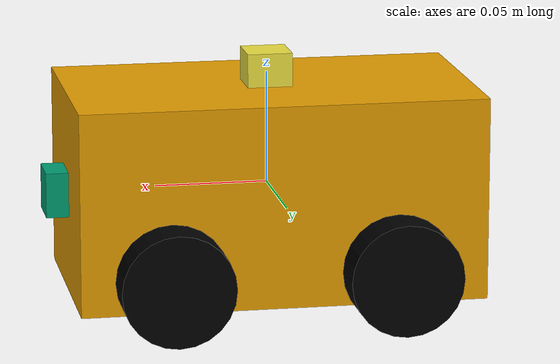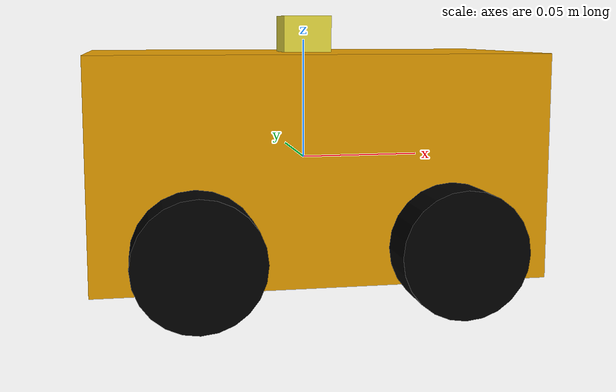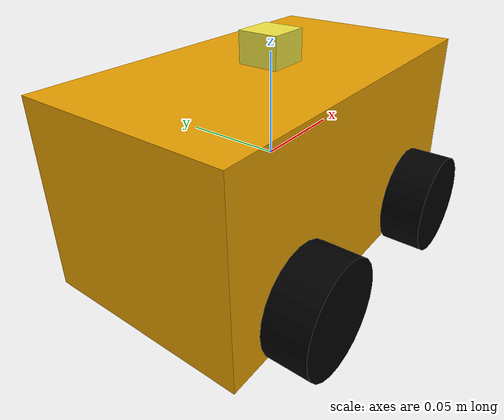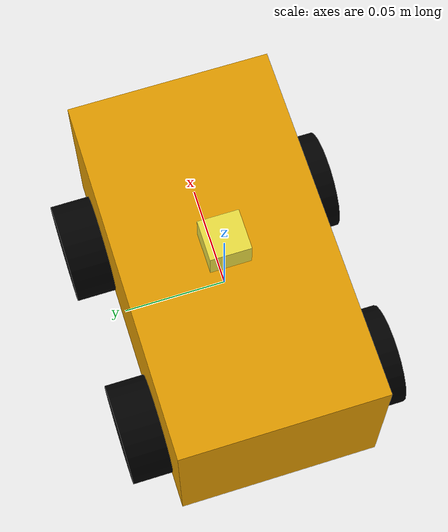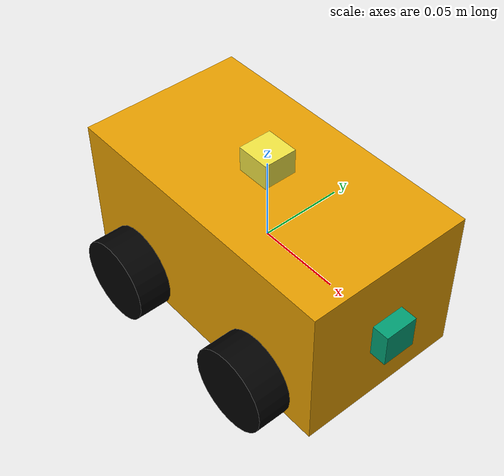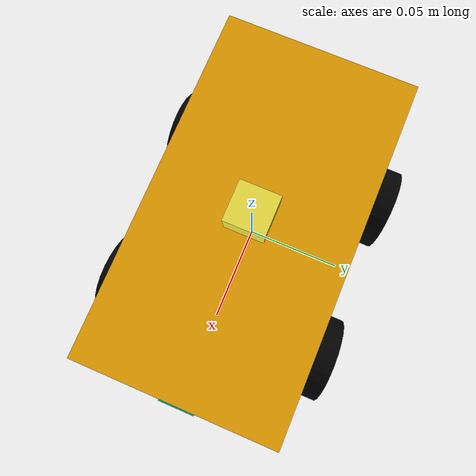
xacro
<?xml version="1.0"?>
<robot xmlns:xacro="http://www.ros.org/wiki/xacro" name="robot">

<!-- xacro arguments -->
<xacro:property name="width" value="0.1" />
<xacro:property name="bodylen" value="0.18" />

<!-- xacro macros -->
<xacro:macro name="default_origin">
   <origin rpy="1.57075 0 0" xyz="0 0 0"/>
</xacro:macro>

<xacro:macro name="wheel_create" params="prefix x y z mu1 mu2 kp kd">
	<link name="${prefix}_wheel">
		<visual>
			<xacro:default_origin />
			<geometry>
				<cylinder length="${bodylen/9}" radius="${width/4}"/>
			</geometry>
			<material name="black"/>
		</visual>
		<collision>
			<xacro:default_origin />
			<geometry>
				<cylinder length="${bodylen/9}" radius="${width/4}"/>
			</geometry>
		</collision>
		<inertial>
			<mass value="0.1"/>
			<inertia ixx="0.0005" ixy="0.0" ixz="0.0" iyy="0.0005" iyz="0.0" izz="0.0005"/>
		</inertial>
	</link>

	<joint name="${prefix}_joint" type="continuous">
		<axis rpy="0 0 0" xyz="0 1 0"/>
		<parent link="base_link"/>
		<child link="${prefix}_wheel"/>
		<origin rpy="0 0 0" xyz="${x} ${y} ${z}"/>
	</joint>

	<gazebo reference="${prefix}_wheel">
      <mu1 value="${mu1}"/>
      <mu2 value="${mu2}"/>
      <kp value="${kp}" />
      <kd value="${kd}" />
      <material>Gazebo/Black</material>
	</gazebo>
</xacro:macro>

<!-- color -->
<material name="blue">
	<color rgba="0 0 0.8 1"/>
</material>
<material name="black">
	<color rgba="0 0 0 1"/>
</material>
<material name="white">
	<color rgba="1 1 1 1"/>
</material>

<!-- base -->
<link name="base_link">
	<visual>
		<geometry>
			<box size="${bodylen} ${width} ${bodylen/2}"/>
		</geometry>
	</visual>
	<collision>
		<geometry>
			<box size="${bodylen} ${width} ${bodylen/2}"/>
		</geometry>
	</collision>
	<inertial>
    	<mass value="1.5"/>
    	<inertia ixx="0.001" ixy="0.0" ixz="0.0" iyy="0.001" iyz="0.0" izz="0.001"/>
	</inertial>
</link>

<link name="base_footprint"/>

 <joint name="base_joint" type="fixed">
    <parent link="base_footprint"/>
    <child link="base_link"/>
    <origin xyz="0.0 0.0 0.0" rpy="0 0 0"/>
  </joint>

<!-- sensor -->
<link name="sensor_place">
	<visual>
		<geometry>
			<box size="${bodylen/9} ${width/5} ${bodylen/9}"/>
		</geometry>
		<origin  xyz="0 0 0"/>
	</visual>
	<collision>
		<geometry>
			<box size="${bodylen/9} ${width/5} ${bodylen/9}"/>
		</geometry>
		<origin  xyz="0 0 0"/>
	</collision>
	<inertial>
    	<mass value="0.1"/>
    	<inertia ixx="0.001" ixy="0.0" ixz="0.0" iyy="0.001" iyz="0.0" izz="0.001"/>
	</inertial>
</link>

<joint name="sensor_joint" type="fixed">
	<parent link="base_link"/>
	<child link="sensor_place"/>
	<origin rpy="0 0 0" xyz="0.09 0 0"/>
</joint>

<link name="back_place">
	<visual>
		<geometry>
			<box size="${bodylen/9} ${width/5} ${bodylen/9}"/>
		</geometry>
		<origin  xyz="0 0 0"/>
	</visual>
	<collision>
		<geometry>
			<box size="${bodylen/9} ${width/5} ${bodylen/9}"/>
		</geometry>
		<origin  xyz="0 0 0"/>
	</collision>
	<inertial>
    	<mass value="0.1"/>
    	<inertia ixx="0.001" ixy="0.0" ixz="0.0" iyy="0.001" iyz="0.0" izz="0.001"/>
	</inertial>
</link>

<joint name="back_joint" type="fixed">
	<parent link="base_link"/>
	<child link="back_place"/>
	<origin rpy="0 0 0" xyz="0 0 0.05"/>
</joint>

<joint name="sensor_depth_joint" type="fixed">
        <origin xyz="0 0 0" rpy="0 0 0"/>
        <parent link="sensor_place"/>
        <child link="sensor_depth_link"/>
      </joint>
<link name="sensor_depth_link"/>
<!-- wheels -->
<xacro:wheel_create prefix="right_front" x="0.05" y="-0.06" z="-0.03" mu1="0.0" mu2="0.0" kp="10000000.0" kd="1.0"/>
<xacro:wheel_create prefix="right_back" x="-0.05" y="-0.06" z="-0.03" mu1="200.0" mu2="100.0" kp="10000000.0" kd="1.0"/>
<xacro:wheel_create prefix="left_front" x="0.05" y="0.06" z="-0.03" mu1="0.0" mu2="0.0" kp="10000000.0" kd="1.0"/>
<xacro:wheel_create prefix="left_back" x="-0.05" y="0.06" z="-0.03" mu1="200.0" mu2="100.0" kp="10000000.0" kd="1.0"/>

<!-- gazebo -->

<xacro:include filename="robot.gazebo.xacro" />

</robot>
